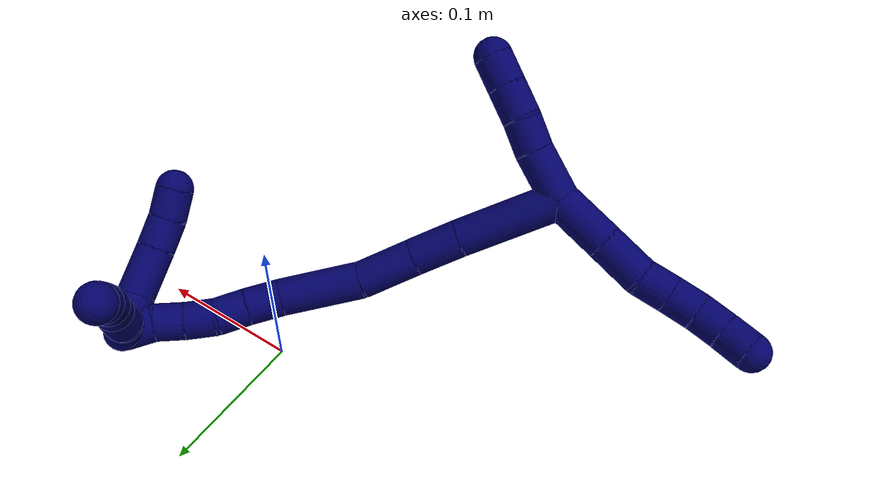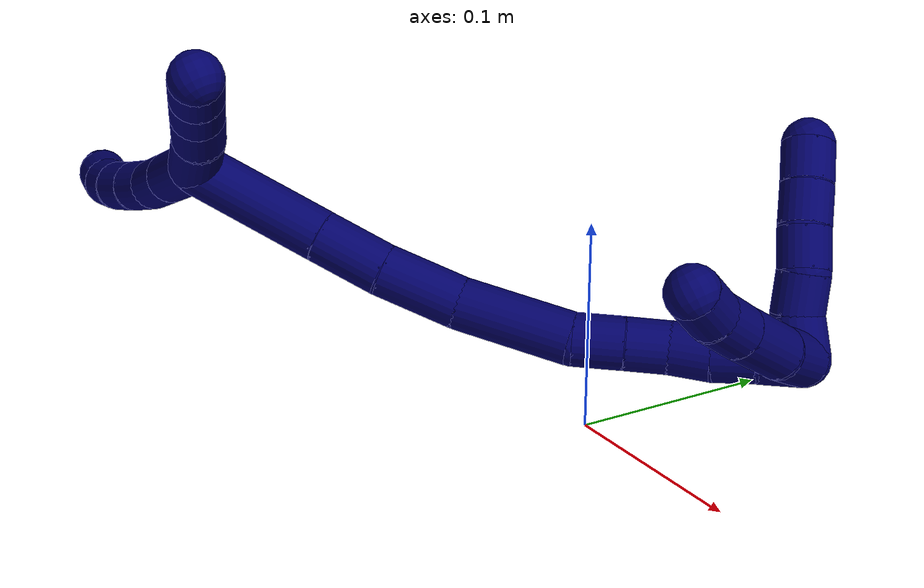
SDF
<sdf version="1.7">
 <world name="default">
  <model name="7">
   <static>0</static>
   <link name="7">
    <collision name="collision-cylinder-e_1_2_8">
     <pose>-0.016747 0.007857 0.004632 -1.03809 -1.07207 0.654363</pose>
     <geometry><cylinder><radius>0.0125</radius><length>0.038139</length></cylinder></geometry>
     <surface>
      <friction><ode><mu>1.16</mu><mu2>1.16</mu2><slip1>0</slip1><slip2>0</slip2></ode></friction>
      <contact><ode><kp>1e+06</kp><kd>1</kd><max_vel>0</max_vel><min_depth>0.001</min_depth></ode></contact>
     </surface>
    </collision>
    <visual name="visual-cylinder-e_1_2_8">
     <pose>-0.016747 0.007857 0.004632 -1.03809 -1.07207 0.654363</pose>
     <geometry><cylinder><radius>0.0125</radius><length>0.038139</length></cylinder></geometry>
     <material><ambient>0.003922 0 0.403922 1</ambient></material>
    </visual>
    <collision name="collision-cylinder-e_2_8_9">
     <pose>-0.04707 0.022232 0.013062 -1.04323 -1.06366 0.652149</pose>
     <geometry><cylinder><radius>0.0125</radius><length>0.031062</length></cylinder></geometry>
     <surface>
      <friction><ode><mu>1.16</mu><mu2>1.16</mu2><slip1>0</slip1><slip2>0</slip2></ode></friction>
      <contact><ode><kp>1e+06</kp><kd>1</kd><max_vel>0</max_vel><min_depth>0.001</min_depth></ode></contact>
     </surface>
    </collision>
    <visual name="visual-cylinder-e_2_8_9">
     <pose>-0.04707 0.022232 0.013062 -1.04323 -1.06366 0.652149</pose>
     <geometry><cylinder><radius>0.0125</radius><length>0.031062</length></cylinder></geometry>
     <material><ambient>0.003922 0 0.403922 1</ambient></material>
    </visual>
    <collision name="collision-cylinder-e_3_9_10">
     <pose>-0.069719 0.031066 0.020603 -0.554142 -1.11906 0.352521</pose>
     <geometry><cylinder><radius>0.0125</radius><length>0.020168</length></cylinder></geometry>
     <surface>
      <friction><ode><mu>1.16</mu><mu2>1.16</mu2><slip1>0</slip1><slip2>0</slip2></ode></friction>
      <contact><ode><kp>1e+06</kp><kd>1</kd><max_vel>0</max_vel><min_depth>0.001</min_depth></ode></contact>
     </surface>
    </collision>
    <visual name="visual-cylinder-e_3_9_10">
     <pose>-0.069719 0.031066 0.020603 -0.554142 -1.11906 0.352521</pose>
     <geometry><cylinder><radius>0.0125</radius><length>0.020168</length></cylinder></geometry>
     <material><ambient>0.003922 0 0.403922 1</ambient></material>
    </visual>
    <collision name="collision-cylinder-e_4_10_11">
     <pose>-0.087716 0.036342 0.028472 -0.622264 -1.05352 0.369767</pose>
     <geometry><cylinder><radius>0.0125</radius><length>0.020537</length></cylinder></geometry>
     <surface>
      <friction><ode><mu>1.16</mu><mu2>1.16</mu2><slip1>0</slip1><slip2>0</slip2></ode></friction>
      <contact><ode><kp>1e+06</kp><kd>1</kd><max_vel>0</max_vel><min_depth>0.001</min_depth></ode></contact>
     </surface>
    </collision>
    <visual name="visual-cylinder-e_4_10_11">
     <pose>-0.087716 0.036342 0.028472 -0.622264 -1.05352 0.369767</pose>
     <geometry><cylinder><radius>0.0125</radius><length>0.020537</length></cylinder></geometry>
     <material><ambient>0.003922 0 0.403922 1</ambient></material>
    </visual>
    <collision name="collision-cylinder-e_5_11_12">
     <pose>-0.10451 0.043645 0.036989 -0.779855 -0.905391 0.394578</pose>
     <geometry><cylinder><radius>0.0125</radius><length>0.020007</length></cylinder></geometry>
     <surface>
      <friction><ode><mu>1.16</mu><mu2>1.16</mu2><slip1>0</slip1><slip2>0</slip2></ode></friction>
      <contact><ode><kp>1e+06</kp><kd>1</kd><max_vel>0</max_vel><min_depth>0.001</min_depth></ode></contact>
     </surface>
    </collision>
    <visual name="visual-cylinder-e_5_11_12">
     <pose>-0.10451 0.043645 0.036989 -0.779855 -0.905391 0.394578</pose>
     <geometry><cylinder><radius>0.0125</radius><length>0.020007</length></cylinder></geometry>
     <material><ambient>0.003922 0 0.403922 1</ambient></material>
    </visual>
    <collision name="collision-cylinder-e_6_12_6">
     <pose>-0.11895 0.053539 0.046566 -0.819497 -0.713088 0.320766</pose>
     <geometry><cylinder><radius>0.0125</radius><length>0.020087</length></cylinder></geometry>
     <surface>
      <friction><ode><mu>1.16</mu><mu2>1.16</mu2><slip1>0</slip1><slip2>0</slip2></ode></friction>
      <contact><ode><kp>1e+06</kp><kd>1</kd><max_vel>0</max_vel><min_depth>0.001</min_depth></ode></contact>
     </surface>
    </collision>
    <visual name="visual-cylinder-e_6_12_6">
     <pose>-0.11895 0.053539 0.046566 -0.819497 -0.713088 0.320766</pose>
     <geometry><cylinder><radius>0.0125</radius><length>0.020087</length></cylinder></geometry>
     <material><ambient>0.003922 0 0.403922 1</ambient></material>
    </visual>
    <collision name="collision-cylinder-e_1_2_13">
     <pose>0.014872 -0.009357 0.001105 1.45321 1.00606 0.909725</pose>
     <geometry><cylinder><radius>0.0125</radius><length>0.035211</length></cylinder></geometry>
     <surface>
      <friction><ode><mu>1.16</mu><mu2>1.16</mu2><slip1>0</slip1><slip2>0</slip2></ode></friction>
      <contact><ode><kp>1e+06</kp><kd>1</kd><max_vel>0</max_vel><min_depth>0.001</min_depth></ode></contact>
     </surface>
    </collision>
    <visual name="visual-cylinder-e_1_2_13">
     <pose>0.014872 -0.009357 0.001105 1.45321 1.00606 0.909725</pose>
     <geometry><cylinder><radius>0.0125</radius><length>0.035211</length></cylinder></geometry>
     <material><ambient>0.003922 0 0.403922 1</ambient></material>
    </visual>
    <collision name="collision-cylinder-e_2_13_14">
     <pose>0.038535 -0.024743 0.004266 1.24228 0.943798 0.700354</pose>
     <geometry><cylinder><radius>0.0125</radius><length>0.021712</length></cylinder></geometry>
     <surface>
      <friction><ode><mu>1.16</mu><mu2>1.16</mu2><slip1>0</slip1><slip2>0</slip2></ode></friction>
      <contact><ode><kp>1e+06</kp><kd>1</kd><max_vel>0</max_vel><min_depth>0.001</min_depth></ode></contact>
     </surface>
    </collision>
    <visual name="visual-cylinder-e_2_13_14">
     <pose>0.038535 -0.024743 0.004266 1.24228 0.943798 0.700354</pose>
     <geometry><cylinder><radius>0.0125</radius><length>0.021712</length></cylinder></geometry>
     <material><ambient>0.003922 0 0.403922 1</ambient></material>
    </visual>
    <collision name="collision-cylinder-e_3_14_15">
     <pose>0.056297 -0.037513 0.007063 1.46112 0.923514 0.838791</pose>
     <geometry><cylinder><radius>0.0125</radius><length>0.022491</length></cylinder></geometry>
     <surface>
      <friction><ode><mu>1.16</mu><mu2>1.16</mu2><slip1>0</slip1><slip2>0</slip2></ode></friction>
      <contact><ode><kp>1e+06</kp><kd>1</kd><max_vel>0</max_vel><min_depth>0.001</min_depth></ode></contact>
     </surface>
    </collision>
    <visual name="visual-cylinder-e_3_14_15">
     <pose>0.056297 -0.037513 0.007063 1.46112 0.923514 0.838791</pose>
     <geometry><cylinder><radius>0.0125</radius><length>0.022491</length></cylinder></geometry>
     <material><ambient>0.003922 0 0.403922 1</ambient></material>
    </visual>
    <collision name="collision-cylinder-e_4_15_5">
     <pose>0.073475 -0.050426 0.008495 1.4595 0.923016 0.837117</pose>
     <geometry><cylinder><radius>0.0125</radius><length>0.020586</length></cylinder></geometry>
     <surface>
      <friction><ode><mu>1.16</mu><mu2>1.16</mu2><slip1>0</slip1><slip2>0</slip2></ode></friction>
      <contact><ode><kp>1e+06</kp><kd>1</kd><max_vel>0</max_vel><min_depth>0.001</min_depth></ode></contact>
     </surface>
    </collision>
    <visual name="visual-cylinder-e_4_15_5">
     <pose>0.073475 -0.050426 0.008495 1.4595 0.923016 0.837117</pose>
     <geometry><cylinder><radius>0.0125</radius><length>0.020586</length></cylinder></geometry>
     <material><ambient>0.003922 0 0.403922 1</ambient></material>
    </visual>
    <collision name="collision-cylinder-e_1_2_16">
     <pose>0.014939 0.012666 -0.028256 -2.72019 0.449509 -1.63739</pose>
     <geometry><cylinder><radius>0.0125</radius><length>0.068761</length></cylinder></geometry>
     <surface>
      <friction><ode><mu>1.16</mu><mu2>1.16</mu2><slip1>0</slip1><slip2>0</slip2></ode></friction>
      <contact><ode><kp>1e+06</kp><kd>1</kd><max_vel>0</max_vel><min_depth>0.001</min_depth></ode></contact>
     </surface>
    </collision>
    <visual name="visual-cylinder-e_1_2_16">
     <pose>0.014939 0.012666 -0.028256 -2.72019 0.449509 -1.63739</pose>
     <geometry><cylinder><radius>0.0125</radius><length>0.068761</length></cylinder></geometry>
     <material><ambient>0.003922 0 0.403922 1</ambient></material>
    </visual>
    <collision name="collision-cylinder-e_2_16_17">
     <pose>0.036746 0.031868 -0.069965 -2.68934 0.430473 -1.51983</pose>
     <geometry><cylinder><radius>0.0125</radius><length>0.032915</length></cylinder></geometry>
     <surface>
      <friction><ode><mu>1.16</mu><mu2>1.16</mu2><slip1>0</slip1><slip2>0</slip2></ode></friction>
      <contact><ode><kp>1e+06</kp><kd>1</kd><max_vel>0</max_vel><min_depth>0.001</min_depth></ode></contact>
     </surface>
    </collision>
    <visual name="visual-cylinder-e_2_16_17">
     <pose>0.036746 0.031868 -0.069965 -2.68934 0.430473 -1.51983</pose>
     <geometry><cylinder><radius>0.0125</radius><length>0.032915</length></cylinder></geometry>
     <material><ambient>0.003922 0 0.403922 1</ambient></material>
    </visual>
    <collision name="collision-cylinder-e_3_17_18">
     <pose>0.052276 0.04749 -0.098199 -2.59044 0.46304 -1.38991</pose>
     <geometry><cylinder><radius>0.0125</radius><length>0.038788</length></cylinder></geometry>
     <surface>
      <friction><ode><mu>1.16</mu><mu2>1.16</mu2><slip1>0</slip1><slip2>0</slip2></ode></friction>
      <contact><ode><kp>1e+06</kp><kd>1</kd><max_vel>0</max_vel><min_depth>0.001</min_depth></ode></contact>
     </surface>
    </collision>
    <visual name="visual-cylinder-e_3_17_18">
     <pose>0.052276 0.04749 -0.098199 -2.59044 0.46304 -1.38991</pose>
     <geometry><cylinder><radius>0.0125</radius><length>0.038788</length></cylinder></geometry>
     <material><ambient>0.003922 0 0.403922 1</ambient></material>
    </visual>
    <collision name="collision-cylinder-e_4_18_19">
     <pose>0.077573 0.066752 -0.1322 -2.65466 0.652966 -1.87576</pose>
     <geometry><cylinder><radius>0.0125</radius><length>0.054756</length></cylinder></geometry>
     <surface>
      <friction><ode><mu>1.16</mu><mu2>1.16</mu2><slip1>0</slip1><slip2>0</slip2></ode></friction>
      <contact><ode><kp>1e+06</kp><kd>1</kd><max_vel>0</max_vel><min_depth>0.001</min_depth></ode></contact>
     </surface>
    </collision>
    <visual name="visual-cylinder-e_4_18_19">
     <pose>0.077573 0.066752 -0.1322 -2.65466 0.652966 -1.87576</pose>
     <geometry><cylinder><radius>0.0125</radius><length>0.054756</length></cylinder></geometry>
     <material><ambient>0.003922 0 0.403922 1</ambient></material>
    </visual>
    <collision name="collision-cylinder-e_5_19_20">
     <pose>0.10192 0.083382 -0.157562 -2.33144 0.71355 -1.43112</pose>
     <geometry><cylinder><radius>0.0125</radius><length>0.023571</length></cylinder></geometry>
     <surface>
      <friction><ode><mu>1.16</mu><mu2>1.16</mu2><slip1>0</slip1><slip2>0</slip2></ode></friction>
      <contact><ode><kp>1e+06</kp><kd>1</kd><max_vel>0</max_vel><min_depth>0.001</min_depth></ode></contact>
     </surface>
    </collision>
    <visual name="visual-cylinder-e_5_19_20">
     <pose>0.10192 0.083382 -0.157562 -2.33144 0.71355 -1.43112</pose>
     <geometry><cylinder><radius>0.0125</radius><length>0.023571</length></cylinder></geometry>
     <material><ambient>0.003922 0 0.403922 1</ambient></material>
    </visual>
    <collision name="collision-cylinder-e_6_20_21">
     <pose>0.116086 0.095928 -0.169152 -2.3005 0.668339 -1.32026</pose>
     <geometry><cylinder><radius>0.0125</radius><length>0.020825</length></cylinder></geometry>
     <surface>
      <friction><ode><mu>1.16</mu><mu2>1.16</mu2><slip1>0</slip1><slip2>0</slip2></ode></friction>
      <contact><ode><kp>1e+06</kp><kd>1</kd><max_vel>0</max_vel><min_depth>0.001</min_depth></ode></contact>
     </surface>
    </collision>
    <visual name="visual-cylinder-e_6_20_21">
     <pose>0.116086 0.095928 -0.169152 -2.3005 0.668339 -1.32026</pose>
     <geometry><cylinder><radius>0.0125</radius><length>0.020825</length></cylinder></geometry>
     <material><ambient>0.003922 0 0.403922 1</ambient></material>
    </visual>
    <collision name="collision-cylinder-e_7_21_22">
     <pose>0.129664 0.105813 -0.180639 -2.58073 0.784939 -1.9258</pose>
     <geometry><cylinder><radius>0.0125</radius><length>0.020162</length></cylinder></geometry>
     <surface>
      <friction><ode><mu>1.16</mu><mu2>1.16</mu2><slip1>0</slip1><slip2>0</slip2></ode></friction>
      <contact><ode><kp>1e+06</kp><kd>1</kd><max_vel>0</max_vel><min_depth>0.001</min_depth></ode></contact>
     </surface>
    </collision>
    <visual name="visual-cylinder-e_7_21_22">
     <pose>0.129664 0.105813 -0.180639 -2.58073 0.784939 -1.9258</pose>
     <geometry><cylinder><radius>0.0125</radius><length>0.020162</length></cylinder></geometry>
     <material><ambient>0.003922 0 0.403922 1</ambient></material>
    </visual>
    <collision name="collision-cylinder-e_8_22_23">
     <pose>0.144719 0.113395 -0.191496 -2.47526 0.912827 -1.91366</pose>
     <geometry><cylinder><radius>0.0125</radius><length>0.020045</length></cylinder></geometry>
     <surface>
      <friction><ode><mu>1.16</mu><mu2>1.16</mu2><slip1>0</slip1><slip2>0</slip2></ode></friction>
      <contact><ode><kp>1e+06</kp><kd>1</kd><max_vel>0</max_vel><min_depth>0.001</min_depth></ode></contact>
     </surface>
    </collision>
    <visual name="visual-cylinder-e_8_22_23">
     <pose>0.144719 0.113395 -0.191496 -2.47526 0.912827 -1.91366</pose>
     <geometry><cylinder><radius>0.0125</radius><length>0.020045</length></cylinder></geometry>
     <material><ambient>0.003922 0 0.403922 1</ambient></material>
    </visual>
    <collision name="collision-cylinder-e_9_23_1">
     <pose>0.159125 0.122975 -0.201441 -2.29532 0.697042 -1.3578</pose>
     <geometry><cylinder><radius>0.0125</radius><length>0.020177</length></cylinder></geometry>
     <surface>
      <friction><ode><mu>1.16</mu><mu2>1.16</mu2><slip1>0</slip1><slip2>0</slip2></ode></friction>
      <contact><ode><kp>1e+06</kp><kd>1</kd><max_vel>0</max_vel><min_depth>0.001</min_depth></ode></contact>
     </surface>
    </collision>
    <visual name="visual-cylinder-e_9_23_1">
     <pose>0.159125 0.122975 -0.201441 -2.29532 0.697042 -1.3578</pose>
     <geometry><cylinder><radius>0.0125</radius><length>0.020177</length></cylinder></geometry>
     <material><ambient>0.003922 0 0.403922 1</ambient></material>
    </visual>
    <collision name="collision-cylinder-e_1_1_24">
     <pose>0.168308 0.116985 -0.202889 1.26818 0.215829 0.159004</pose>
     <geometry><cylinder><radius>0.0125</radius><length>0.025272</length></cylinder></geometry>
     <surface>
      <friction><ode><mu>1.16</mu><mu2>1.16</mu2><slip1>0</slip1><slip2>0</slip2></ode></friction>
      <contact><ode><kp>1e+06</kp><kd>1</kd><max_vel>0</max_vel><min_depth>0.001</min_depth></ode></contact>
     </surface>
    </collision>
    <visual name="visual-cylinder-e_1_1_24">
     <pose>0.168308 0.116985 -0.202889 1.26818 0.215829 0.159004</pose>
     <geometry><cylinder><radius>0.0125</radius><length>0.025272</length></cylinder></geometry>
     <material><ambient>0.003922 0 0.403922 1</ambient></material>
    </visual>
    <collision name="collision-cylinder-e_2_24_25">
     <pose>0.173795 0.090659 -0.191895 1.10474 0.169199 0.104444</pose>
     <geometry><cylinder><radius>0.0125</radius><length>0.033032</length></cylinder></geometry>
     <surface>
      <friction><ode><mu>1.16</mu><mu2>1.16</mu2><slip1>0</slip1><slip2>0</slip2></ode></friction>
      <contact><ode><kp>1e+06</kp><kd>1</kd><max_vel>0</max_vel><min_depth>0.001</min_depth></ode></contact>
     </surface>
    </collision>
    <visual name="visual-cylinder-e_2_24_25">
     <pose>0.173795 0.090659 -0.191895 1.10474 0.169199 0.104444</pose>
     <geometry><cylinder><radius>0.0125</radius><length>0.033032</length></cylinder></geometry>
     <material><ambient>0.003922 0 0.403922 1</ambient></material>
    </visual>
    <collision name="collision-cylinder-e_3_25_26">
     <pose>0.178653 0.067065 -0.179615 1.06905 0.198487 0.117757</pose>
     <geometry><cylinder><radius>0.0125</radius><length>0.021057</length></cylinder></geometry>
     <surface>
      <friction><ode><mu>1.16</mu><mu2>1.16</mu2><slip1>0</slip1><slip2>0</slip2></ode></friction>
      <contact><ode><kp>1e+06</kp><kd>1</kd><max_vel>0</max_vel><min_depth>0.001</min_depth></ode></contact>
     </surface>
    </collision>
    <visual name="visual-cylinder-e_3_25_26">
     <pose>0.178653 0.067065 -0.179615 1.06905 0.198487 0.117757</pose>
     <geometry><cylinder><radius>0.0125</radius><length>0.021057</length></cylinder></geometry>
     <material><ambient>0.003922 0 0.403922 1</ambient></material>
    </visual>
    <collision name="collision-cylinder-e_4_26_4">
     <pose>0.184273 0.050012 -0.169186 0.971749 0.350612 0.186536</pose>
     <geometry><cylinder><radius>0.0125</radius><length>0.020638</length></cylinder></geometry>
     <surface>
      <friction><ode><mu>1.16</mu><mu2>1.16</mu2><slip1>0</slip1><slip2>0</slip2></ode></friction>
      <contact><ode><kp>1e+06</kp><kd>1</kd><max_vel>0</max_vel><min_depth>0.001</min_depth></ode></contact>
     </surface>
    </collision>
    <visual name="visual-cylinder-e_4_26_4">
     <pose>0.184273 0.050012 -0.169186 0.971749 0.350612 0.186536</pose>
     <geometry><cylinder><radius>0.0125</radius><length>0.020638</length></cylinder></geometry>
     <material><ambient>0.003922 0 0.403922 1</ambient></material>
    </visual>
    <collision name="collision-cylinder-e_1_1_27">
     <pose>0.168379 0.1306 -0.197138 -0.191959 0.281462 -0.027276</pose>
     <geometry><cylinder><radius>0.0125</radius><length>0.02</length></cylinder></geometry>
     <surface>
      <friction><ode><mu>1.16</mu><mu2>1.16</mu2><slip1>0</slip1><slip2>0</slip2></ode></friction>
      <contact><ode><kp>1e+06</kp><kd>1</kd><max_vel>0</max_vel><min_depth>0.001</min_depth></ode></contact>
     </surface>
    </collision>
    <visual name="visual-cylinder-e_1_1_27">
     <pose>0.168379 0.1306 -0.197138 -0.191959 0.281462 -0.027276</pose>
     <geometry><cylinder><radius>0.0125</radius><length>0.02</length></cylinder></geometry>
     <material><ambient>0.003922 0 0.403922 1</ambient></material>
    </visual>
    <collision name="collision-cylinder-e_2_27_28">
     <pose>0.176857 0.134342 -0.179717 -0.234548 0.606573 -0.073705</pose>
     <geometry><cylinder><radius>0.0125</radius><length>0.02</length></cylinder></geometry>
     <surface>
      <friction><ode><mu>1.16</mu><mu2>1.16</mu2><slip1>0</slip1><slip2>0</slip2></ode></friction>
      <contact><ode><kp>1e+06</kp><kd>1</kd><max_vel>0</max_vel><min_depth>0.001</min_depth></ode></contact>
     </surface>
    </collision>
    <visual name="visual-cylinder-e_2_27_28">
     <pose>0.176857 0.134342 -0.179717 -0.234548 0.606573 -0.073705</pose>
     <geometry><cylinder><radius>0.0125</radius><length>0.02</length></cylinder></geometry>
     <material><ambient>0.003922 0 0.403922 1</ambient></material>
    </visual>
    <collision name="collision-cylinder-e_3_28_29">
     <pose>0.185984 0.13953 -0.162921 -0.356448 0.349684 -0.063619</pose>
     <geometry><cylinder><radius>0.0125</radius><length>0.02</length></cylinder></geometry>
     <surface>
      <friction><ode><mu>1.16</mu><mu2>1.16</mu2><slip1>0</slip1><slip2>0</slip2></ode></friction>
      <contact><ode><kp>1e+06</kp><kd>1</kd><max_vel>0</max_vel><min_depth>0.001</min_depth></ode></contact>
     </surface>
    </collision>
    <visual name="visual-cylinder-e_3_28_29">
     <pose>0.185984 0.13953 -0.162921 -0.356448 0.349684 -0.063619</pose>
     <geometry><cylinder><radius>0.0125</radius><length>0.02</length></cylinder></geometry>
     <material><ambient>0.003922 0 0.403922 1</ambient></material>
    </visual>
    <collision name="collision-cylinder-e_4_29_30">
     <pose>0.192514 0.147235 -0.145705 -0.484443 0.315586 -0.078586</pose>
     <geometry><cylinder><radius>0.0125</radius><length>0.02</length></cylinder></geometry>
     <surface>
      <friction><ode><mu>1.16</mu><mu2>1.16</mu2><slip1>0</slip1><slip2>0</slip2></ode></friction>
      <contact><ode><kp>1e+06</kp><kd>1</kd><max_vel>0</max_vel><min_depth>0.001</min_depth></ode></contact>
     </surface>
    </collision>
    <visual name="visual-cylinder-e_4_29_30">
     <pose>0.192514 0.147235 -0.145705 -0.484443 0.315586 -0.078586</pose>
     <geometry><cylinder><radius>0.0125</radius><length>0.02</length></cylinder></geometry>
     <material><ambient>0.003922 0 0.403922 1</ambient></material>
    </visual>
    <collision name="collision-cylinder-e_5_30_3">
     <pose>0.19816 0.156392 -0.128856 -0.510926 0.257032 -0.067475</pose>
     <geometry><cylinder><radius>0.0125</radius><length>0.02</length></cylinder></geometry>
     <surface>
      <friction><ode><mu>1.16</mu><mu2>1.16</mu2><slip1>0</slip1><slip2>0</slip2></ode></friction>
      <contact><ode><kp>1e+06</kp><kd>1</kd><max_vel>0</max_vel><min_depth>0.001</min_depth></ode></contact>
     </surface>
    </collision>
    <visual name="visual-cylinder-e_5_30_3">
     <pose>0.19816 0.156392 -0.128856 -0.510926 0.257032 -0.067475</pose>
     <geometry><cylinder><radius>0.0125</radius><length>0.02</length></cylinder></geometry>
     <material><ambient>0.003922 0 0.403922 1</ambient></material>
    </visual>
    <collision name="collision-sphere-3">
     <pose>0.200702 0.161121 -0.120419 0 -0 0</pose>
     <geometry><sphere><radius>0.0125</radius></sphere></geometry>
     <surface>
      <friction><ode><mu>1.16</mu><mu2>1.16</mu2><slip1>0</slip1><slip2>0</slip2></ode></friction>
      <contact><ode><kp>1e+06</kp><kd>1</kd><max_vel>0</max_vel><min_depth>0.001</min_depth></ode></contact>
     </surface>
    </collision>
    <visual name="visual-sphere-3">
     <pose>0.200702 0.161121 -0.120419 0 -0 0</pose>
     <geometry><sphere><radius>0.0125</radius></sphere></geometry>
     <material><ambient>0.003922 0 0.403922 1</ambient></material>
    </visual>
    <collision name="collision-sphere-30">
     <pose>0.195618 0.151663 -0.137292 0 -0 0</pose>
     <geometry><sphere><radius>0.0125</radius></sphere></geometry>
     <surface>
      <friction><ode><mu>1.16</mu><mu2>1.16</mu2><slip1>0</slip1><slip2>0</slip2></ode></friction>
      <contact><ode><kp>1e+06</kp><kd>1</kd><max_vel>0</max_vel><min_depth>0.001</min_depth></ode></contact>
     </surface>
    </collision>
    <visual name="visual-sphere-30">
     <pose>0.195618 0.151663 -0.137292 0 -0 0</pose>
     <geometry><sphere><radius>0.0125</radius></sphere></geometry>
     <material><ambient>0.003922 0 0.403922 1</ambient></material>
    </visual>
    <collision name="collision-sphere-29">
     <pose>0.18941 0.142808 -0.154117 0 -0 0</pose>
     <geometry><sphere><radius>0.0125</radius></sphere></geometry>
     <surface>
      <friction><ode><mu>1.16</mu><mu2>1.16</mu2><slip1>0</slip1><slip2>0</slip2></ode></friction>
      <contact><ode><kp>1e+06</kp><kd>1</kd><max_vel>0</max_vel><min_depth>0.001</min_depth></ode></contact>
     </surface>
    </collision>
    <visual name="visual-sphere-29">
     <pose>0.18941 0.142808 -0.154117 0 -0 0</pose>
     <geometry><sphere><radius>0.0125</radius></sphere></geometry>
     <material><ambient>0.003922 0 0.403922 1</ambient></material>
    </visual>
    <collision name="collision-sphere-28">
     <pose>0.182558 0.136252 -0.171725 0 -0 0</pose>
     <geometry><sphere><radius>0.0125</radius></sphere></geometry>
     <surface>
      <friction><ode><mu>1.16</mu><mu2>1.16</mu2><slip1>0</slip1><slip2>0</slip2></ode></friction>
      <contact><ode><kp>1e+06</kp><kd>1</kd><max_vel>0</max_vel><min_depth>0.001</min_depth></ode></contact>
     </surface>
    </collision>
    <visual name="visual-sphere-28">
     <pose>0.182558 0.136252 -0.171725 0 -0 0</pose>
     <geometry><sphere><radius>0.0125</radius></sphere></geometry>
     <material><ambient>0.003922 0 0.403922 1</ambient></material>
    </visual>
    <collision name="collision-sphere-27">
     <pose>0.171157 0.132433 -0.187708 0 -0 0</pose>
     <geometry><sphere><radius>0.0125</radius></sphere></geometry>
     <surface>
      <friction><ode><mu>1.16</mu><mu2>1.16</mu2><slip1>0</slip1><slip2>0</slip2></ode></friction>
      <contact><ode><kp>1e+06</kp><kd>1</kd><max_vel>0</max_vel><min_depth>0.001</min_depth></ode></contact>
     </surface>
    </collision>
    <visual name="visual-sphere-27">
     <pose>0.171157 0.132433 -0.187708 0 -0 0</pose>
     <geometry><sphere><radius>0.0125</radius></sphere></geometry>
     <material><ambient>0.003922 0 0.403922 1</ambient></material>
    </visual>
    <collision name="collision-sphere-4">
     <pose>0.187817 0.042008 -0.163721 0 -0 0</pose>
     <geometry><sphere><radius>0.0125</radius></sphere></geometry>
     <surface>
      <friction><ode><mu>1.16</mu><mu2>1.16</mu2><slip1>0</slip1><slip2>0</slip2></ode></friction>
      <contact><ode><kp>1e+06</kp><kd>1</kd><max_vel>0</max_vel><min_depth>0.001</min_depth></ode></contact>
     </surface>
    </collision>
    <visual name="visual-sphere-4">
     <pose>0.187817 0.042008 -0.163721 0 -0 0</pose>
     <geometry><sphere><radius>0.0125</radius></sphere></geometry>
     <material><ambient>0.003922 0 0.403922 1</ambient></material>
    </visual>
    <collision name="collision-sphere-26">
     <pose>0.180729 0.058016 -0.17465 0 -0 0</pose>
     <geometry><sphere><radius>0.0125</radius></sphere></geometry>
     <surface>
      <friction><ode><mu>1.16</mu><mu2>1.16</mu2><slip1>0</slip1><slip2>0</slip2></ode></friction>
      <contact><ode><kp>1e+06</kp><kd>1</kd><max_vel>0</max_vel><min_depth>0.001</min_depth></ode></contact>
     </surface>
    </collision>
    <visual name="visual-sphere-26">
     <pose>0.180729 0.058016 -0.17465 0 -0 0</pose>
     <geometry><sphere><radius>0.0125</radius></sphere></geometry>
     <material><ambient>0.003922 0 0.403922 1</ambient></material>
    </visual>
    <collision name="collision-sphere-25">
     <pose>0.176576 0.076115 -0.184579 0 -0 0</pose>
     <geometry><sphere><radius>0.0125</radius></sphere></geometry>
     <surface>
      <friction><ode><mu>1.16</mu><mu2>1.16</mu2><slip1>0</slip1><slip2>0</slip2></ode></friction>
      <contact><ode><kp>1e+06</kp><kd>1</kd><max_vel>0</max_vel><min_depth>0.001</min_depth></ode></contact>
     </surface>
    </collision>
    <visual name="visual-sphere-25">
     <pose>0.176576 0.076115 -0.184579 0 -0 0</pose>
     <geometry><sphere><radius>0.0125</radius></sphere></geometry>
     <material><ambient>0.003922 0 0.403922 1</ambient></material>
    </visual>
    <collision name="collision-sphere-24">
     <pose>0.171014 0.105203 -0.199211 0 -0 0</pose>
     <geometry><sphere><radius>0.0125</radius></sphere></geometry>
     <surface>
      <friction><ode><mu>1.16</mu><mu2>1.16</mu2><slip1>0</slip1><slip2>0</slip2></ode></friction>
      <contact><ode><kp>1e+06</kp><kd>1</kd><max_vel>0</max_vel><min_depth>0.001</min_depth></ode></contact>
     </surface>
    </collision>
    <visual name="visual-sphere-24">
     <pose>0.171014 0.105203 -0.199211 0 -0 0</pose>
     <geometry><sphere><radius>0.0125</radius></sphere></geometry>
     <material><ambient>0.003922 0 0.403922 1</ambient></material>
    </visual>
    <collision name="collision-sphere-1">
     <pose>0.165602 0.128767 -0.206568 0 -0 0</pose>
     <geometry><sphere><radius>0.0125</radius></sphere></geometry>
     <surface>
      <friction><ode><mu>1.16</mu><mu2>1.16</mu2><slip1>0</slip1><slip2>0</slip2></ode></friction>
      <contact><ode><kp>1e+06</kp><kd>1</kd><max_vel>0</max_vel><min_depth>0.001</min_depth></ode></contact>
     </surface>
    </collision>
    <visual name="visual-sphere-1">
     <pose>0.165602 0.128767 -0.206568 0 -0 0</pose>
     <geometry><sphere><radius>0.0125</radius></sphere></geometry>
     <material><ambient>0.003922 0 0.403922 1</ambient></material>
    </visual>
    <collision name="collision-sphere-23">
     <pose>0.152649 0.117183 -0.196314 0 -0 0</pose>
     <geometry><sphere><radius>0.0125</radius></sphere></geometry>
     <surface>
      <friction><ode><mu>1.16</mu><mu2>1.16</mu2><slip1>0</slip1><slip2>0</slip2></ode></friction>
      <contact><ode><kp>1e+06</kp><kd>1</kd><max_vel>0</max_vel><min_depth>0.001</min_depth></ode></contact>
     </surface>
    </collision>
    <visual name="visual-sphere-23">
     <pose>0.152649 0.117183 -0.196314 0 -0 0</pose>
     <geometry><sphere><radius>0.0125</radius></sphere></geometry>
     <material><ambient>0.003922 0 0.403922 1</ambient></material>
    </visual>
    <collision name="collision-sphere-22">
     <pose>0.136789 0.109606 -0.186678 0 -0 0</pose>
     <geometry><sphere><radius>0.0125</radius></sphere></geometry>
     <surface>
      <friction><ode><mu>1.16</mu><mu2>1.16</mu2><slip1>0</slip1><slip2>0</slip2></ode></friction>
      <contact><ode><kp>1e+06</kp><kd>1</kd><max_vel>0</max_vel><min_depth>0.001</min_depth></ode></contact>
     </surface>
    </collision>
    <visual name="visual-sphere-22">
     <pose>0.136789 0.109606 -0.186678 0 -0 0</pose>
     <geometry><sphere><radius>0.0125</radius></sphere></geometry>
     <material><ambient>0.003922 0 0.403922 1</ambient></material>
    </visual>
    <collision name="collision-sphere-21">
     <pose>0.122539 0.10202 -0.174601 0 -0 0</pose>
     <geometry><sphere><radius>0.0125</radius></sphere></geometry>
     <surface>
      <friction><ode><mu>1.16</mu><mu2>1.16</mu2><slip1>0</slip1><slip2>0</slip2></ode></friction>
      <contact><ode><kp>1e+06</kp><kd>1</kd><max_vel>0</max_vel><min_depth>0.001</min_depth></ode></contact>
     </surface>
    </collision>
    <visual name="visual-sphere-21">
     <pose>0.122539 0.10202 -0.174601 0 -0 0</pose>
     <geometry><sphere><radius>0.0125</radius></sphere></geometry>
     <material><ambient>0.003922 0 0.403922 1</ambient></material>
    </visual>
    <collision name="collision-sphere-12">
     <pose>-0.11238 0.047988 0.041381 0 -0 0</pose>
     <geometry><sphere><radius>0.0125</radius></sphere></geometry>
     <surface>
      <friction><ode><mu>1.16</mu><mu2>1.16</mu2><slip1>0</slip1><slip2>0</slip2></ode></friction>
      <contact><ode><kp>1e+06</kp><kd>1</kd><max_vel>0</max_vel><min_depth>0.001</min_depth></ode></contact>
     </surface>
    </collision>
    <visual name="visual-sphere-12">
     <pose>-0.11238 0.047988 0.041381 0 -0 0</pose>
     <geometry><sphere><radius>0.0125</radius></sphere></geometry>
     <material><ambient>0.003922 0 0.403922 1</ambient></material>
    </visual>
    <collision name="collision-sphere-11">
     <pose>-0.096641 0.039302 0.032598 0 -0 0</pose>
     <geometry><sphere><radius>0.0125</radius></sphere></geometry>
     <surface>
      <friction><ode><mu>1.16</mu><mu2>1.16</mu2><slip1>0</slip1><slip2>0</slip2></ode></friction>
      <contact><ode><kp>1e+06</kp><kd>1</kd><max_vel>0</max_vel><min_depth>0.001</min_depth></ode></contact>
     </surface>
    </collision>
    <visual name="visual-sphere-11">
     <pose>-0.096641 0.039302 0.032598 0 -0 0</pose>
     <geometry><sphere><radius>0.0125</radius></sphere></geometry>
     <material><ambient>0.003922 0 0.403922 1</ambient></material>
    </visual>
    <collision name="collision-sphere-10">
     <pose>-0.078791 0.033382 0.024346 0 -0 0</pose>
     <geometry><sphere><radius>0.0125</radius></sphere></geometry>
     <surface>
      <friction><ode><mu>1.16</mu><mu2>1.16</mu2><slip1>0</slip1><slip2>0</slip2></ode></friction>
      <contact><ode><kp>1e+06</kp><kd>1</kd><max_vel>0</max_vel><min_depth>0.001</min_depth></ode></contact>
     </surface>
    </collision>
    <visual name="visual-sphere-10">
     <pose>-0.078791 0.033382 0.024346 0 -0 0</pose>
     <geometry><sphere><radius>0.0125</radius></sphere></geometry>
     <material><ambient>0.003922 0 0.403922 1</ambient></material>
    </visual>
    <collision name="collision-sphere-9">
     <pose>-0.060646 0.02875 0.01686 0 -0 0</pose>
     <geometry><sphere><radius>0.0125</radius></sphere></geometry>
     <surface>
      <friction><ode><mu>1.16</mu><mu2>1.16</mu2><slip1>0</slip1><slip2>0</slip2></ode></friction>
      <contact><ode><kp>1e+06</kp><kd>1</kd><max_vel>0</max_vel><min_depth>0.001</min_depth></ode></contact>
     </surface>
    </collision>
    <visual name="visual-sphere-9">
     <pose>-0.060646 0.02875 0.01686 0 -0 0</pose>
     <geometry><sphere><radius>0.0125</radius></sphere></geometry>
     <material><ambient>0.003922 0 0.403922 1</ambient></material>
    </visual>
    <collision name="collision-sphere-2">
     <geometry><sphere><radius>0.0125</radius></sphere></geometry>
     <surface>
      <friction><ode><mu>1.16</mu><mu2>1.16</mu2><slip1>0</slip1><slip2>0</slip2></ode></friction>
      <contact><ode><kp>1e+06</kp><kd>1</kd><max_vel>0</max_vel><min_depth>0.001</min_depth></ode></contact>
     </surface>
    </collision>
    <visual name="visual-sphere-2">
     <geometry><sphere><radius>0.0125</radius></sphere></geometry>
     <material><ambient>0.003922 0 0.403922 1</ambient></material>
    </visual>
    <collision name="collision-sphere-19">
     <pose>0.094206 0.076927 -0.151419 0 -0 0</pose>
     <geometry><sphere><radius>0.0125</radius></sphere></geometry>
     <surface>
      <friction><ode><mu>1.16</mu><mu2>1.16</mu2><slip1>0</slip1><slip2>0</slip2></ode></friction>
      <contact><ode><kp>1e+06</kp><kd>1</kd><max_vel>0</max_vel><min_depth>0.001</min_depth></ode></contact>
     </surface>
    </collision>
    <visual name="visual-sphere-19">
     <pose>0.094206 0.076927 -0.151419 0 -0 0</pose>
     <geometry><sphere><radius>0.0125</radius></sphere></geometry>
     <material><ambient>0.003922 0 0.403922 1</ambient></material>
    </visual>
    <collision name="collision-sphere-8">
     <pose>-0.033493 0.015715 0.009265 0 -0 0</pose>
     <geometry><sphere><radius>0.0125</radius></sphere></geometry>
     <surface>
      <friction><ode><mu>1.16</mu><mu2>1.16</mu2><slip1>0</slip1><slip2>0</slip2></ode></friction>
      <contact><ode><kp>1e+06</kp><kd>1</kd><max_vel>0</max_vel><min_depth>0.001</min_depth></ode></contact>
     </surface>
    </collision>
    <visual name="visual-sphere-8">
     <pose>-0.033493 0.015715 0.009265 0 -0 0</pose>
     <geometry><sphere><radius>0.0125</radius></sphere></geometry>
     <material><ambient>0.003922 0 0.403922 1</ambient></material>
    </visual>
    <collision name="collision-sphere-6">
     <pose>-0.12552 0.05909 0.051751 0 -0 0</pose>
     <geometry><sphere><radius>0.0125</radius></sphere></geometry>
     <surface>
      <friction><ode><mu>1.16</mu><mu2>1.16</mu2><slip1>0</slip1><slip2>0</slip2></ode></friction>
      <contact><ode><kp>1e+06</kp><kd>1</kd><max_vel>0</max_vel><min_depth>0.001</min_depth></ode></contact>
     </surface>
    </collision>
    <visual name="visual-sphere-6">
     <pose>-0.12552 0.05909 0.051751 0 -0 0</pose>
     <geometry><sphere><radius>0.0125</radius></sphere></geometry>
     <material><ambient>0.003922 0 0.403922 1</ambient></material>
    </visual>
    <collision name="collision-sphere-13">
     <pose>0.029743 -0.018715 0.002211 0 -0 0</pose>
     <geometry><sphere><radius>0.0125</radius></sphere></geometry>
     <surface>
      <friction><ode><mu>1.16</mu><mu2>1.16</mu2><slip1>0</slip1><slip2>0</slip2></ode></friction>
      <contact><ode><kp>1e+06</kp><kd>1</kd><max_vel>0</max_vel><min_depth>0.001</min_depth></ode></contact>
     </surface>
    </collision>
    <visual name="visual-sphere-13">
     <pose>0.029743 -0.018715 0.002211 0 -0 0</pose>
     <geometry><sphere><radius>0.0125</radius></sphere></geometry>
     <material><ambient>0.003922 0 0.403922 1</ambient></material>
    </visual>
    <collision name="collision-sphere-14">
     <pose>0.047326 -0.030772 0.006321 0 -0 0</pose>
     <geometry><sphere><radius>0.0125</radius></sphere></geometry>
     <surface>
      <friction><ode><mu>1.16</mu><mu2>1.16</mu2><slip1>0</slip1><slip2>0</slip2></ode></friction>
      <contact><ode><kp>1e+06</kp><kd>1</kd><max_vel>0</max_vel><min_depth>0.001</min_depth></ode></contact>
     </surface>
    </collision>
    <visual name="visual-sphere-14">
     <pose>0.047326 -0.030772 0.006321 0 -0 0</pose>
     <geometry><sphere><radius>0.0125</radius></sphere></geometry>
     <material><ambient>0.003922 0 0.403922 1</ambient></material>
    </visual>
    <collision name="collision-sphere-15">
     <pose>0.065268 -0.044253 0.007805 0 -0 0</pose>
     <geometry><sphere><radius>0.0125</radius></sphere></geometry>
     <surface>
      <friction><ode><mu>1.16</mu><mu2>1.16</mu2><slip1>0</slip1><slip2>0</slip2></ode></friction>
      <contact><ode><kp>1e+06</kp><kd>1</kd><max_vel>0</max_vel><min_depth>0.001</min_depth></ode></contact>
     </surface>
    </collision>
    <visual name="visual-sphere-15">
     <pose>0.065268 -0.044253 0.007805 0 -0 0</pose>
     <geometry><sphere><radius>0.0125</radius></sphere></geometry>
     <material><ambient>0.003922 0 0.403922 1</ambient></material>
    </visual>
    <collision name="collision-sphere-5">
     <pose>0.081683 -0.056598 0.009185 0 -0 0</pose>
     <geometry><sphere><radius>0.0125</radius></sphere></geometry>
     <surface>
      <friction><ode><mu>1.16</mu><mu2>1.16</mu2><slip1>0</slip1><slip2>0</slip2></ode></friction>
      <contact><ode><kp>1e+06</kp><kd>1</kd><max_vel>0</max_vel><min_depth>0.001</min_depth></ode></contact>
     </surface>
    </collision>
    <visual name="visual-sphere-5">
     <pose>0.081683 -0.056598 0.009185 0 -0 0</pose>
     <geometry><sphere><radius>0.0125</radius></sphere></geometry>
     <material><ambient>0.003922 0 0.403922 1</ambient></material>
    </visual>
    <collision name="collision-sphere-16">
     <pose>0.029878 0.025332 -0.056512 0 -0 0</pose>
     <geometry><sphere><radius>0.0125</radius></sphere></geometry>
     <surface>
      <friction><ode><mu>1.16</mu><mu2>1.16</mu2><slip1>0</slip1><slip2>0</slip2></ode></friction>
      <contact><ode><kp>1e+06</kp><kd>1</kd><max_vel>0</max_vel><min_depth>0.001</min_depth></ode></contact>
     </surface>
    </collision>
    <visual name="visual-sphere-16">
     <pose>0.029878 0.025332 -0.056512 0 -0 0</pose>
     <geometry><sphere><radius>0.0125</radius></sphere></geometry>
     <material><ambient>0.003922 0 0.403922 1</ambient></material>
    </visual>
    <collision name="collision-sphere-17">
     <pose>0.043614 0.038403 -0.083417 0 -0 0</pose>
     <geometry><sphere><radius>0.0125</radius></sphere></geometry>
     <surface>
      <friction><ode><mu>1.16</mu><mu2>1.16</mu2><slip1>0</slip1><slip2>0</slip2></ode></friction>
      <contact><ode><kp>1e+06</kp><kd>1</kd><max_vel>0</max_vel><min_depth>0.001</min_depth></ode></contact>
     </surface>
    </collision>
    <visual name="visual-sphere-17">
     <pose>0.043614 0.038403 -0.083417 0 -0 0</pose>
     <geometry><sphere><radius>0.0125</radius></sphere></geometry>
     <material><ambient>0.003922 0 0.403922 1</ambient></material>
    </visual>
    <collision name="collision-sphere-18">
     <pose>0.060939 0.056577 -0.112982 0 -0 0</pose>
     <geometry><sphere><radius>0.0125</radius></sphere></geometry>
     <surface>
      <friction><ode><mu>1.16</mu><mu2>1.16</mu2><slip1>0</slip1><slip2>0</slip2></ode></friction>
      <contact><ode><kp>1e+06</kp><kd>1</kd><max_vel>0</max_vel><min_depth>0.001</min_depth></ode></contact>
     </surface>
    </collision>
    <visual name="visual-sphere-18">
     <pose>0.060939 0.056577 -0.112982 0 -0 0</pose>
     <geometry><sphere><radius>0.0125</radius></sphere></geometry>
     <material><ambient>0.003922 0 0.403922 1</ambient></material>
    </visual>
    <collision name="collision-sphere-20">
     <pose>0.109634 0.089837 -0.163704 0 -0 0</pose>
     <geometry><sphere><radius>0.0125</radius></sphere></geometry>
     <surface>
      <friction><ode><mu>1.16</mu><mu2>1.16</mu2><slip1>0</slip1><slip2>0</slip2></ode></friction>
      <contact><ode><kp>1e+06</kp><kd>1</kd><max_vel>0</max_vel><min_depth>0.001</min_depth></ode></contact>
     </surface>
    </collision>
    <visual name="visual-sphere-20">
     <pose>0.109634 0.089837 -0.163704 0 -0 0</pose>
     <geometry><sphere><radius>0.0125</radius></sphere></geometry>
     <material><ambient>0.003922 0 0.403922 1</ambient></material>
    </visual>
    <inertial>
     <pose>0.069874 0.056518 -0.087171 0 -0 0</pose>
     <mass>0.75</mass>
     <inertia><ixx>-8e-06</ixx><ixy>0</ixy><ixz>0</ixz><iyy>1.4e-05</iyy><iyz>0</iyz><izz>-5.3e-05</izz></inertia>
    </inertial>
   </link>
   <pose>-0.13185 -0.134796 0.112628 -0.116641 -0.675024 0.418186</pose>
  </model>
 </world>
</sdf>
